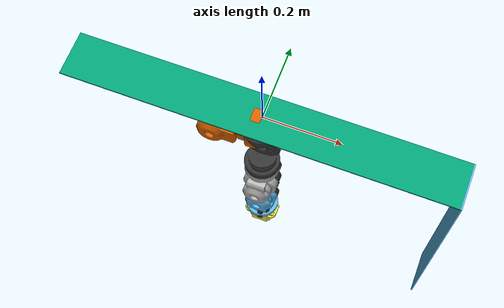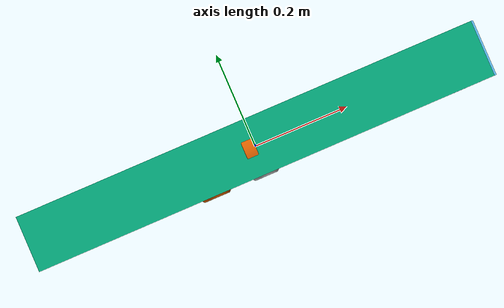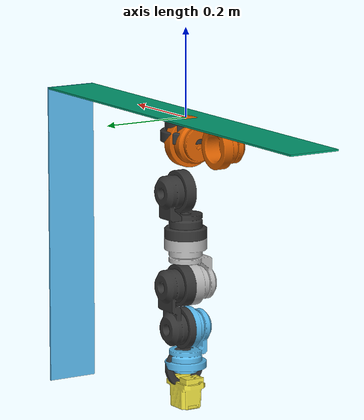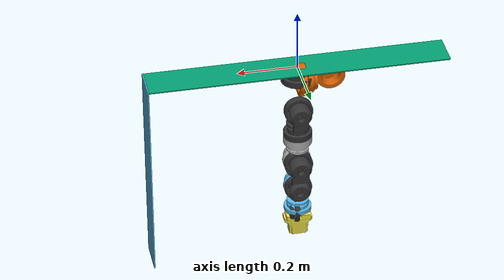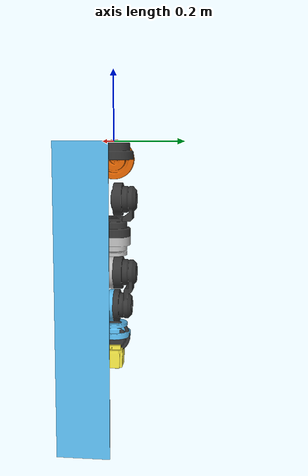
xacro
<?xml version="1.0"?>

<robot
  name="sample_robot"
  xmlns:xacro="http://ros.org/wiki/xacro">

<!-- this xacro file is for parsing urdf file for simulating in gazebo -->

  <!-- include sample_robot generator macro -->
  <xacro:include filename="$(find my_robot_description)/urdf/sample.xacro" />

  <!-- TODO create my_robot.gazebo: gazebo-customization elements, such as color -->

  <!-- TODO create my_robot_materials.xacro: for importing rviz colors -->

  <!-- TODO foundation is temporary added -->
  <!-- link to provide the location reference for the whole arm -->
  <link name="base_link" />

  <sample_robot_foundation parent="base_link">
    <origin xyz="0 0 0" />
  </sample_robot_foundation>

  <sample_robot parent="base_link">
    <!-- arm model is fixed to the base_link -->
    <origin xyz="0 0 0" rpy="0 ${pi} 0" />
  </sample_robot>

  <!-- Add the transmission necessary to move the simulated robot's joints -->

  <!-- TODO check the type of transmission, hardwareInterface and so on -->

  <!-- First revolute servo -->
  <transmission name="bracket_1_2_revolute">
    <type>transmission_interface/SimpleTransimission</type>
    <joint  name="bracket_1_2_joint">
      <hardwareInterface>hardware_interface/PositionJointInterface</hardwareInterface>
    </joint>
    <actuator name="bracket_1_2_revolute_servo">
      <hardwareInterface>PositionJointInterface</hardwareInterface>
      <mechanicalReduction>1</mechanicalReduction>
    </actuator>
  </transmission>

  <!-- Second revolute servo -->
  <transmission name="bracket_2_3_revolute">
    <type>transmission_interface/SimpleTransmission</type>
    <joint name="bracket_2_3_joint">
      <hardwareInterface>hardware_interface/PositionJointInterface</hardwareInterface>
    </joint>
    <actuator name="bracket_2_3_revolute_servo">
      <hardwareInterface>PositionJointInterface</hardwareInterface>
      <mechanicalReduction>1</mechanicalReduction>
    </actuator>
  </transmission>

  <!-- 3. revolute servo -->
  <transmission name="bracket_3_4_revolute">
    <type>transmission_interface/SimpleTransmission</type>
    <joint name="bracket_3_4_joint">
      <hardwareInterface>hardware_interface/PositionJointInterface</hardwareInterface>
    </joint>
    <actuator name="bracket_3_4_revolute_servo">
      <hardwareInterface>PositionJointInterface</hardwareInterface>
      <mechanicalReduction>1</mechanicalReduction>
    </actuator>
  </transmission>

  <!-- 4. revolute servo -->
  <transmission name="bracket_4_5_revolute">
    <type>transmission_interface/SimpleTransmission</type>
    <joint name="bracket_4_5_joint">
      <hardwareInterface>hardware_interface/PositionJointInterface</hardwareInterface>
    </joint>
    <actuator name="bracket_4_5_revolute_servo">
      <hardwareInterface>PositionJointInterface</hardwareInterface>
      <mechanicalReduction>1</mechanicalReduction>
    </actuator>
  </transmission>

  <!-- 5. revolute servo -->
  <transmission name="bracket_5_6_revolute">
    <type>transmission_interface/SimpleTransmission</type>
    <joint name="bracket_5_6_joint">
      <hardwareInterface>hardware_interface/PositionJointInterface</hardwareInterface>
    </joint>
    <actuator name="bracket_5_6_revolute_servo">
      <hardwareInterface>PositionJointInterface</hardwareInterface>
      <mechanicalReduction>1</mechanicalReduction>
    </actuator>
  </transmission>

  <!-- 6. revolute servo -->
  <transmission name="bracket_6_7_revolute">
    <type>transmission_interface/SimpleTransmission</type>
    <joint name="bracket_6_7_joint">
      <hardwareInterface>hardware_interface/PositionJointInterface</hardwareInterface>
    </joint>
    <actuator name="bracket_6_7_revolute_servo">
      <hardwareInterface>PositionJointInterface</hardwareInterface>
      <mechanicalReduction>1</mechanicalReduction>
    </actuator>
  </transmission>

  <!-- add the gazebo_ros_control plugin -->
  <!-- this is needed for parsing the transmission tag and loads the appropriate hardware interfaces and controler manager -->
  <!-- TODO need to check this is correct way to install gazebo plugins -->

	<!-- Enable the joint feedback for each joint -->
	<gazebo reference="bracket_1_2_joint">
		<provideFeedback>true</provideFeedback>
	</gazebo>
	<gazebo reference="bracket_2_3_joint">
		<provideFeedback>true</provideFeedback>
	</gazebo>
	<gazebo reference="bracket_3_4_joint">
		<provideFeedback>true</provideFeedback>
	</gazebo>
	<gazebo reference="bracket_4_5_joint">
		<provideFeedback>true</provideFeedback>
	</gazebo>
	<gazebo reference="bracket_5_6_joint">
		<provideFeedback>true</provideFeedback>
	</gazebo>
	<gazebo reference="bracket_6_7_joint">
		<provideFeedback>true</provideFeedback>
	</gazebo>

  <!-- plug in for whole robot -->
  <gazebo>
    <!-- plugin for add ros_control -->
    <plugin name="control" filename="libgazebo_ros_control.so"/>
    <!-- add ros_joint_state_publisher -->
    <plugin name="joint_state_publisher" filename="libgazebo_ros_joint_state_publisher.so">
      <updateRate>100.0</updateRate>
      <jointName>
        bracket_1_2_joint,
        bracket_2_3_joint,
        bracket_3_4_joint,
        bracket_4_5_joint,
        bracket_5_6_joint,
        bracket_6_7_joint
      </jointName>
    </plugin>

		<!-- Add force/torque sensor to each joint -->

		<plugin name="ft_sensor1" filename="libgazebo_ros_ft_sensor.so">
			<updateRate>100.0</updateRate>
			<topicName>ft_sensor_topic_1_2_joint</topicName>
			<jointName>bracket_1_2_joint</jointName>
		</plugin>

		<plugin name="ft_sensor2" filename="libgazebo_ros_ft_sensor.so">
			<updateRate>100.0</updateRate>
			<topicName>ft_sensor_topic_2_3_joint</topicName>
			<jointName>bracket_2_3_joint</jointName>
		</plugin>

		<plugin name="ft_sensor3" filename="libgazebo_ros_ft_sensor.so">
			<updateRate>100.0</updateRate>
			<topicName>ft_sensor_topic_3_4_joint</topicName>
			<jointName>bracket_3_4_joint</jointName>
		</plugin>

		<plugin name="ft_sensor4" filename="libgazebo_ros_ft_sensor.so">
			<updateRate>100.0</updateRate>
			<topicName>ft_sensor_topic_4_5_joint</topicName>
			<jointName>bracket_4_5_joint</jointName>
		</plugin>

		<plugin name="ft_sensor5" filename="libgazebo_ros_ft_sensor.so">
			<updateRate>100.0</updateRate>
			<topicName>ft_sensor_topic_5_6_joint</topicName>
			<jointName>bracket_5_6_joint</jointName>
		</plugin>

		<plugin name="ft_sensor6" filename="libgazebo_ros_ft_sensor.so">
			<updateRate>100.0</updateRate>
			<topicName>ft_sensor_topic_6_7_joint</topicName>
			<jointName>bracket_6_7_joint</jointName>
		</plugin>

  </gazebo>

</robot>

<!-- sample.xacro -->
<robot xmlns:xacro="http://ros.org/wiki/xacro">
  <!-- second top urdf -->
  <!-- include other file -->
  <xacro:include filename="$(find my_robot_description)/urdf/sample_hardware.xacro" />

  <!-- sample_robot_foundation description -->
  <xacro:macro name="sample_robot_foundation" params="parent *origin">
    <sample_robot_foundation_1 parent="sample_robot_foundation_2_link">
      <origin xyz="${1.0/2+0.004/2} 0 ${0.004/2 - 0.7/2}" rpy="0 0 0" />
    </sample_robot_foundation_1>

    <sample_robot_foundation_2 parent="${parent}">
      <xacro:insert_block name="origin" />
    </sample_robot_foundation_2>
  </xacro:macro>

  <!-- sample_robot description -->
  <xacro:macro name="sample_robot" params="parent *origin">
    <!-- 1. the first top link and joint -->
    <link name="sample_robot_mounting_link"/>
    <joint name="sample_robot_mounting_joint" type="fixed">
      <xacro:insert_block name="origin" />
      <parent link="${parent}" />
      <child link="sample_robot_mounting_link" />
    </joint>

    <!-- bracket_1 -->
    <bracket_1  parent="sample_robot_mounting_link">
      <origin xyz="0 0 0" rpy="0 0 0" />
    </bracket_1>

    <!-- bracket_2 -->
    <bracket_2 parent="bracket_1_link">
      <origin xyz="0 0 0.051" rpy="0 0 0" />
    </bracket_2>

    <!-- bracket_3 -->
    <bracket_3 parent="bracket_2_link">
      <origin xyz="0 0 0.1125" rpy="0 0 0" />
    </bracket_3>

    <!-- bracket_4 -->
    <bracket_4 parent="bracket_3_link">
      <origin xyz="0 0 0.1065" rpy="0 0 0" />
    </bracket_4>

    <!-- bracket_5 -->
    <bracket_5 parent="bracket_4_link">
      <origin xyz="0 0 0.1055" rpy="0 0 0" />
    </bracket_5>

    <!-- bracket_6 -->
    <bracket_6 parent="bracket_5_link">
      <origin xyz="0 0 0.098" rpy="0 0 0" />
    </bracket_6>

    <!-- bracket_7 -->
    <bracket_7 parent="bracket_6_link">
      <origin xyz="0 0 0.0915" rpy="0 0 0" />
    </bracket_7>

    <end_effector parent="bracket_7_link">
      <origin xyz="0 0 0.031" rpy="0 0 0" />
    </end_effector>
  </xacro:macro>

</robot>

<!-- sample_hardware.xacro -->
<robot xmlns:xacro="http://ros.org/wiki/xacro">
<!-- defined num and set of link and joint -->
<!-- lowest level of xacro -->

<!-- valiables to be used -->
   <material name="black">
      <color rgba="0.2 0.2 0.2 1.0" />
   </material>

<!-- sample_robot_foundation_1 -->
  <xacro:macro name="sample_robot_foundation_1" params="parent *origin">
    <joint name="base_link_foundation_1_joint" type="fixed">
      <xacro:insert_block name="origin" />
      <parent link="${parent}" />
      <child link="sample_robot_foundation_1_link" />
    </joint>
    <link name="sample_robot_foundation_1_link">
	<!-- pysical values of foundations are not fixed -->
     <visual>
        <origin xyz="0 0 0" rpy="0 0 0" />
        <geometry>
         <box size="0.004 0.120 0.7" />
        </geometry>
      </visual>

      <collision>
        <origin xyz="0 0 0" rpy="0 0 0" />
        <geometry>
         <box size="0.004 0.120 0.7" />
        </geometry>
      </collision>

      <inertial>
        <mass value="1.0" /> <!-- This is just temporary value -->
        <origin xyz="0 0 0" rpy="0 0 0" />
	<inertia ixx="0.04203" ixy="0" ixz="0" iyy="0.04083467" iyz="0" izz="0.00120133" />
      </inertial>
    </link>

  </xacro:macro>

  <!-- sample_robot_foundation_2 -->
  <xacro:macro name="sample_robot_foundation_2" params="parent *origin">
    <joint name="foundation_1_2_joint" type="fixed">
      <xacro:insert_block name="origin" />
      <parent link="${parent}" />
      <child link="sample_robot_foundation_2_link" />
    </joint>
    <link name="sample_robot_foundation_2_link">
      <visual>
        <origin xyz="0 0 0" rpy="0 0 0" />
        <geometry>
          <box size="1.0 0.120 0.004" />
        </geometry>
      </visual>

      <collision>
        <origin xyz="0 0 0" rpy="0 0 0" />
        <geometry>
          <box size="1.0 0.120 0.004" />
        </geometry>
      </collision>

      <inertial>
        <mass value="1.0" /> <!-- This is just temporary value -->
        <origin xyz="0 0 0" rpy="0 0 0" />
	<inertia ixx="0.00120133" ixy="0" ixz="0" iyy="4.80133E-3" iyz="0" izz="6.0E-3" />
      </inertial>
    </link>
  </xacro:macro>

<!-- bracket_1 -->
  <xacro:macro name="bracket_1" params="parent *origin">
    <joint name="bracket_0_1_joint" type="fixed">
      <xacro:insert_block name="origin" />
      <parent link="${parent}" />
      <child link="bracket_1_link" />
    </joint>
    <link name="bracket_1_link">
      <visual>
        <origin xyz="0 0 0" rpy="0 0 0" />
        <geometry>
          <mesh filename="package://my_robot_description/meshes/bracket_1.stl" scale="0.001 0.001 0.001"  />
        </geometry>
        <material name="black" />
      </visual>

      <inertial>
        <mass value="0.609588" /> <!-- kg Al 7505 -->
        <origin xyz="0 0 0" rpy="0 0 0" />
        <inertia ixx="1.140E+06" ixy="-1.278E-09" ixz="5.604E-05" iyy="1.140E+06" iyz="1.278E-10" izz="1.142E+06" />
      </inertial>

      <collision>
        <origin xyz="0 0 ${31/(2*1000)}" rpy="0 0 0" />
        <geometry>
          <cylinder radius="${45.5/1000}" length="${31/1000}" />
        </geometry>
      </collision>

    </link>
  </xacro:macro>

<!-- bracket_2 -->
  <xacro:macro name="bracket_2" params="parent *origin"> <!-- TODO add llimit ulimit vlimit -->
    <joint name="bracket_1_2_joint" type="continuous">
      <xacro:insert_block name="origin"/>
      <axis xyz="0 0 1" />
      <parent link="${parent}" />
      <child link="bracket_2_link"/>
    </joint>

    <link name="bracket_2_link">
      <visual>
        <origin xyz="0 0 0" rpy="0 0 0" />
        <geometry>
          <mesh filename="package://my_robot_description/meshes/bracket_2.stl" scale="0.001 0.001 0.001"  />
        </geometry>
      </visual>

      <inertial>
        <origin xyz="0 0 0" rpy="0 0 0" />
        <mass value="1.703374" /> <!-- kg Al -->
        <inertia ixx="1.131E+07" ixy="-0.004" ixz="0.008" iyy="1.074E+07" iyz="2.359E+06" izz="2.774E+06" />
      </inertial>

      <collision>
        <origin xyz="0 0 ${0.160/2}" rpy="0 0 0" />
        <geometry>
          <cylinder radius="${0.1205/2}" length="0.160" />
        </geometry>
      </collision>

    </link>
  </xacro:macro>

<!-- bracket_3 -->
  <xacro:macro name="bracket_3" params="parent *origin">
    <!-- FIXME add limit and ulimit vilimit -->
    <joint name="bracket_2_3_joint" type="continuous">
      <xacro:insert_block name="origin" />
      <axis xyz="0 1 0" />
      <parent link="${parent}" />
      <child link="bracket_3_link" />
    </joint>

    <link name="bracket_3_link">
      <visual>
        <origin xyz="0 0 0" rpy="0 0 0" />
        <geometry>
          <mesh filename="package://my_robot_description/meshes/bracket_3.stl" scale="0.001 0.001 0.001"  />
        </geometry>
        <material name="black" />
      </visual>

      <inertial>
        <mass value="1.400547" /> <!-- kg Al -->
        <origin xyz="0 0 0" rpy="0 0 0" />
        <inertia ixx="5.501E+06" ixy="0.004" ixz="9.410E-04" iyy="4.963E+06" iyz="-1.352E+05" izz="2.037E+06" />
      </inertial>

      <collision>
        <origin xyz="0 0 ${0.154/2}" rpy="0 0 0" />
        <geometry>
          <cylinder radius="${0.112/2}" length="0.154" />
        </geometry>
      </collision>

    </link>
  </xacro:macro>

  <!-- bracket_4 -->
  <xacro:macro name="bracket_4" params="parent *origin">
    <!-- add color and limis -->
    <joint name="bracket_3_4_joint" type="continuous">
      <xacro:insert_block name="origin" />
      <axis xyz="0 0 1" />
      <parent link="${parent}" />
      <child link="bracket_4_link" />
    </joint>
    <link name="bracket_4_link">

      <visual>
        <origin xyz="0 0 0" rpy="0 0 0" />
        <geometry>
          <mesh filename="package://my_robot_description/meshes/bracket_4.stl" scale="0.001 0.001 0.001"  />
        </geometry>
      </visual>

      <inertial>
        <mass value="1.400547" /> <!-- kg Al -->
        <origin xyz="0 0 0" rpy="0 0 0" />
        <inertia ixx="9.477E+06" ixy="-0.004" ixz="0.008" iyy="8.903E+06" iyz="2.204E+06" izz="2.074E+06" />
      </inertial>

      <collision>
        <origin xyz="0 0 ${0.153/2}" rpy="0 0 0" />
        <geometry>
          <cylinder radius="${0.112/2}" length="0.153" />
        </geometry>
      </collision>

    </link>
  </xacro:macro>

  <!-- bracket_5 -->
  <xacro:macro name="bracket_5" params="parent *origin">
    <joint name="bracket_4_5_joint" type="continuous">
      <xacro:insert_block name="origin" />
      <axis xyz="0 1 0" />
      <parent link="${parent}" />
      <child link="bracket_5_link" />
    </joint>

    <link name="bracket_5_link">

      <visual>
        <origin xyz="0 0 0" rpy="0 0 0" />
        <geometry>
          <mesh filename="package://my_robot_description/meshes/bracket_5.stl" scale="0.001 0.001 0.001"  />
        </geometry>
        <material name="black" />
      </visual>

      <inertial>
        <mass value="1.466917" /> <!-- kg Al -->
        <origin xyz="0 0 0" rpy="0 0 0" />
        <inertia ixx="8.003E+06" ixy="-5.689" ixz="-5.342" iyy="7.336E+06" iyz="-1.341E+06" izz="2.080E+06" />
      </inertial>

      <collision>
        <origin xyz="${-1*0.064/2} 0 ${0.192/2}" rpy="0 0 0" />
        <geometry>
          <box size="0.064 0.095 0.192" />
        </geometry>
      </collision>

    </link>
  </xacro:macro>

  <!-- bracket_6 -->
  <xacro:macro name="bracket_6" params="parent *origin">
    <joint name="bracket_5_6_joint" type="continuous">
      <xacro:insert_block name="origin" />
      <axis xyz="0 1 0" />
      <parent link="${parent}"  />
      <child link="bracket_6_link" />
    </joint>

    <link name="bracket_6_link">
      <visual>
        <origin xyz="0 0 0" rpy="0 0 0" />
        <geometry>
          <mesh filename="package://my_robot_description/meshes/bracket_6.stl" scale="0.001 0.001 0.001"  />
        </geometry>
      </visual>

      <inertial>
        <mass value="1.033966" /> <!-- kg Fe TODO check this -->
        <origin xyz="0 0 0" rpy="0 0 0" />
        <inertia ixx="4.047E+06" ixy="0.003" ixz="-8.494E-04" iyy="3.853E+06" iyz="4.974E+04" izz="1.196E+06" />
      </inertial>

      <collision>
        <origin xyz="0 0 ${0.138/2}" rpy="0 0 0" />
        <geometry>
          <cylinder radius="${0.0975/2}" length="0.138" />
        </geometry>
      </collision>

    </link>
  </xacro:macro>

  <!-- bracket_7 -->
  <xacro:macro name="bracket_7" params="parent *origin">
    <joint name="bracket_6_7_joint" type="continuous">
      <xacro:insert_block name="origin"/>
      <axis xyz="0 0 1" />
      <parent link="${parent}" />
      <child link="bracket_7_link" />
    </joint>

    <link name="bracket_7_link">
      <visual>
        <origin xyz="0 0 0" rpy="0 0 0" /> <!-- need to rotate model -->
        <geometry>
          <mesh filename="package://my_robot_description/meshes/bracket_7.stl" scale="0.001 0.001 0.001"  />
        </geometry>
        <material name="black" />
      </visual>

      <inertial>
        <mass value="0.29527" /> <!-- kg Fe TODO check this -->
        <origin xyz="0 0 0" rpy="0 0 0" />
        <inertia ixx="2.678E+05" ixy="2.556E-10" ixz="3.456E-05" iyy="2.678E+05" iyz="0.00" izz="3.474E+05" />
      </inertial>

      <collision>
        <origin xyz="0 0 ${0.031/2}" rpy="0 0 0" />
        <geometry>
          <cylinder radius="${0.0465}" length="0.031" />
        </geometry>
      </collision>
    </link>
  </xacro:macro>

  <!-- end effector -->
  <!-- TODO add real end effector later -->
  <xacro:macro name="end_effector" params="parent *origin">
    <joint name="bracket_7_end_effector_joint" type="fixed">
      <xacro:insert_block name="origin" />
      <parent link="${parent}" />
      <child link="end_effector_link" />
    </joint>

    <link name="end_effector_link">
      <visual>
        <origin xyz="0 0 0" rpy="0 0 0" />
        <geometry>
          <mesh filename="package://my_robot_description/meshes/mounting_hand.stl" scale="0.001 0.001 0.001" />
        </geometry>
      </visual>

      <inertial>
        <mass value="0.26231" /> <!-- kg Fe TODO check this -->
        <origin xyz="0 0 0" rpy="0 0 0" />
        <inertia ixx="2.074E+05" ixy="-653.546" ixz="1857.577" iyy="3.348E+05" iyz="809.375" izz="2.594E+05" />
      </inertial>

      <collision>
        <origin xyz="${0.095/2} ${0.054/2} ${0.0595/2}" rpy="0 0 0" />
        <geometry>
          <box size="0.095 0.054 0.0595" />
        </geometry>
      </collision>
    </link>

  </xacro:macro>

</robot>
